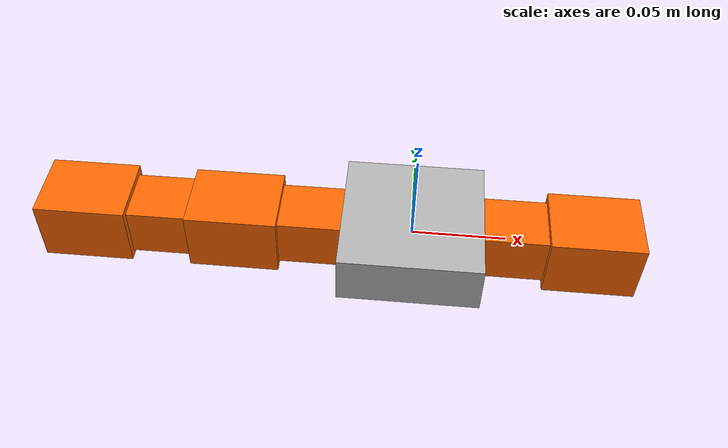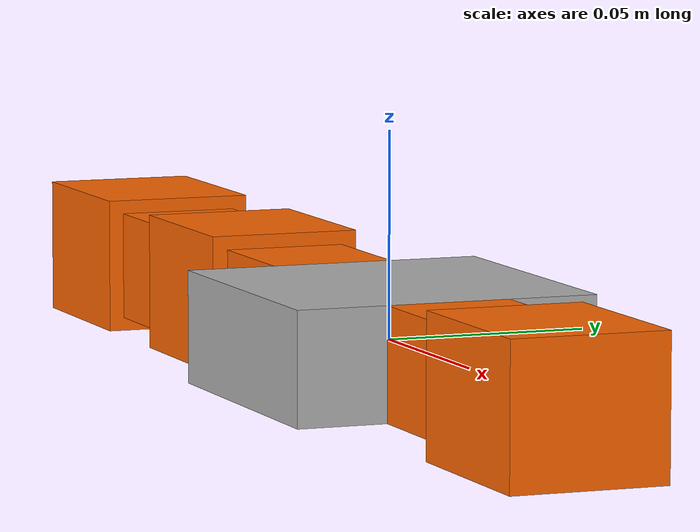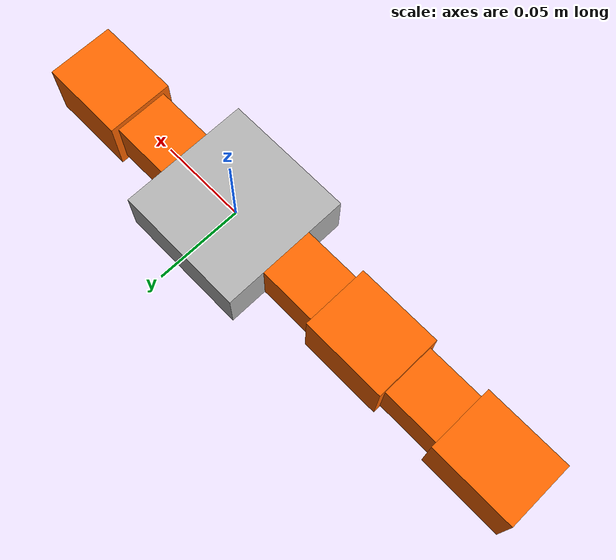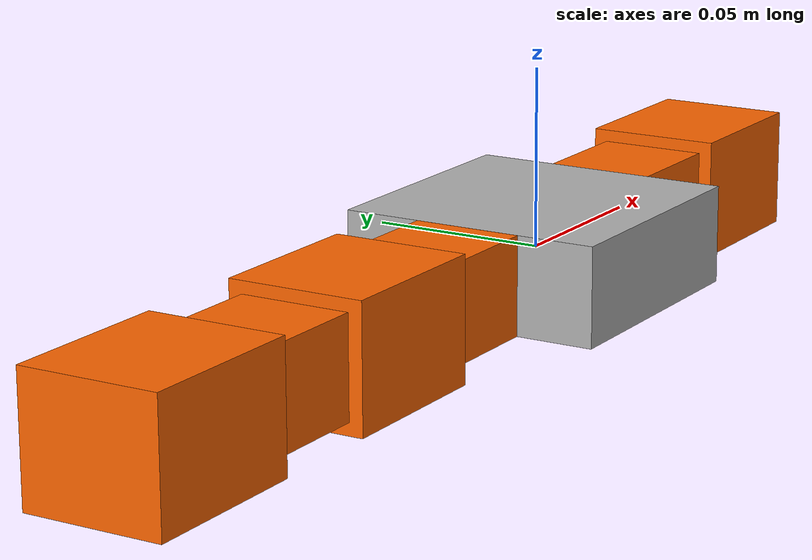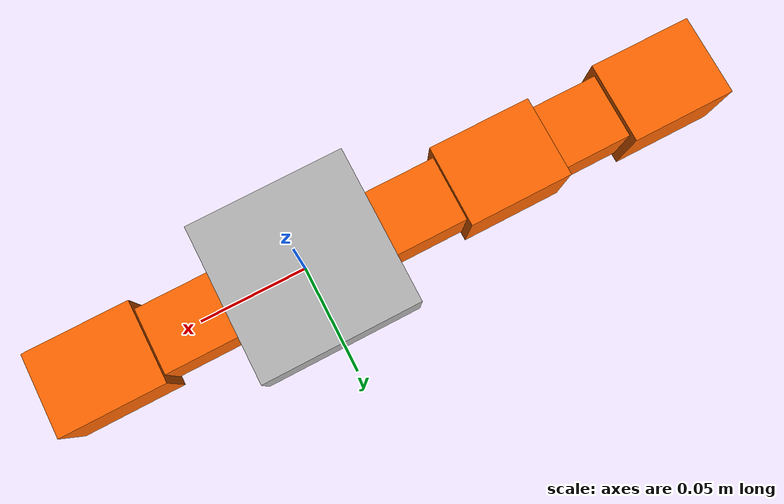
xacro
<?xml version="1.0"?>
<robot xmlns:xacro="http://www.ros.org/wiki/xacro" name="modular_robot">

  <xacro:include filename="module.xacro" />
  <xacro:include filename="base.xacro" />

  <xacro:property name="flat_half_x" value="${0.0747 / 2.0}" />
  <xacro:property name="emerge_half_x" value="${0.0305 / 2.0}" />
  <xacro:property name="base_offset" value="${flat_half_x + emerge_half_x}" />

  <xacro:base name="base" />
  <xacro:module name="plus" />
  <xacro:module name="minus" />
  <xacro:module name="y" />

  <joint name="joint_x_plus" type="fixed">
    <parent link="base_link" />
    <child link="plus_connector_link" />
    <origin xyz="${base_offset} 0 0" rpy="0 0 0" />
  </joint>

  <joint name="joint_x_minus" type="fixed">
    <parent link="base_link" />
    <child link="minus_connector_link" />
    <origin xyz="${-1 * base_offset} 0 0" rpy="0 0 ${pi}" />
  </joint>

  <joint name="joint_y" type="fixed">
    <parent link="minus_motor_link" />
    <child link="y_connector_link" />
    <origin xyz="0.038125 0 0" rpy="0 0 0" />
  </joint>
</robot>

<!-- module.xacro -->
<robot xmlns:xacro="http://www.ros.org/wiki/xacro">

  <xacro:macro name="module" params="name xyz:='0 0 0' rpy:='0 0 0'">
    <link name="${name}_connector_link">
      <inertial>
        <origin xyz="0 0 0" />
        <mass value="0.06" />
        <inertia ixx="8.43e-06" ixy="0" ixz="0" iyy="1.12e-05" iyz="0" izz="1.21e-05" />
      </inertial>

      <visual>
        <origin xyz="0 0 0" rpy="0 0 0" />
        <geometry>
          <box size="0.0385 0.0305 0.0275" />
        </geometry>
        <material name="orange">
          <color rgba="1 0.4 0 1" />
        </material>
      </visual>

      <collision>
        <origin xyz="0 0 0" />
        <geometry>
          <box size="0.0385 0.0305 0.0275" />
        </geometry>
      </collision>
    </link>

    <link name="${name}_motor_link">
      <inertial>
        <origin xyz="0 0 0" />
        <mass value="0.06" />
        <inertia ixx="1.32e-05" ixy="0" ixz="0" iyy="1.75e-05" iyz="0" izz="1.89e-05" />
      </inertial>

      <visual>
        <origin xyz="0 0 0" />
        <geometry>
          <box size="0.048125 0.038125 0.034375" />
        </geometry>
        <material name="orange">
          <color rgba="1 0.4 0 1" />
        </material>
      </visual>

      <collision>
        <origin xyz="0 0 0" />
        <geometry>
          <box size="0.048125 0.038125 0.034375" />
        </geometry>
      </collision>
    </link>

    <joint name="${name}_joint" type="revolute">
      <parent link="${name}_connector_link" />
      <child link="${name}_motor_link" />
      <!-- Offset increased to remove collision overlap -->
      <origin xyz="0.042 0 0" rpy="0 0 0" />
      <axis xyz="0 1 0" />
      <limit effort="0.5" lower="-0.6" upper="0.6" velocity="2.0" />
      <dynamics damping="0.03" />
    </joint>
  </xacro:macro>
</robot>

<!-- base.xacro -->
<robot xmlns:xacro="http://www.ros.org/wiki/xacro">

  <xacro:macro name="base" params="name='base'">
    <xacro:property name="name" value="flat_base" />
    <xacro:property name="mass" value="0.65" />
    <xacro:property name="size_x" value="0.1494" />
    <xacro:property name="size_y" value="0.1494" />
    <xacro:property name="size_z" value="0.055023" />

    <xacro:property name="ixx" value="${(1.0/12.0) * mass * (size_y*size_y + size_z*size_z)}" />
    <xacro:property name="iyy" value="${(1.0/12.0) * mass * (size_x*size_x + size_z*size_z)}" />
    <xacro:property name="izz" value="${(1.0/12.0) * mass * (size_x*size_x + size_y*size_y)}" />

    <link name="base_link">
      <inertial>
        <origin xyz="0 0 0" rpy="0 0 0" />
        <mass value="0.65" />
        <inertia ixx="0.000342" ixy="0" ixz="0" iyy="0.000342" iyz="0" izz="0.000604" />
      </inertial>

      <visual>
        <origin xyz="0 0 0" rpy="0 0 0" />
        <geometry>
          <box size="0.0747 0.0747 0.0275115" />
        </geometry>
        <material name="grey">
          <color rgba="0.7 0.7 0.7 1" />
        </material>
      </visual>

      <collision>
        <origin xyz="0 0 0" rpy="0 0 0" />
        <geometry>
          <box size="0.0747 0.0747 0.0275115" />
        </geometry>
      </collision>
    </link>
  </xacro:macro>

</robot>
